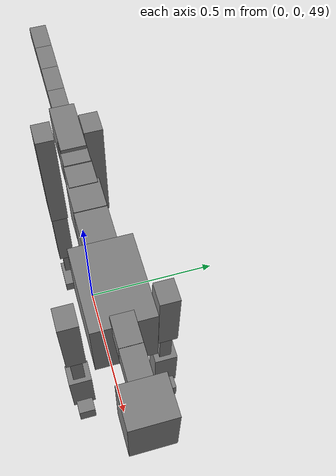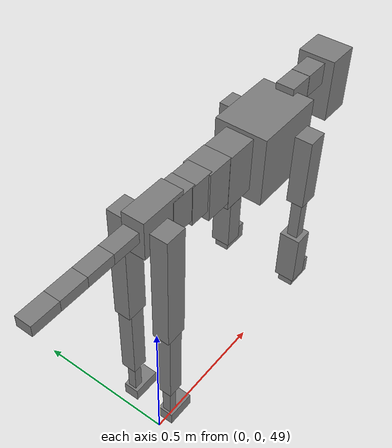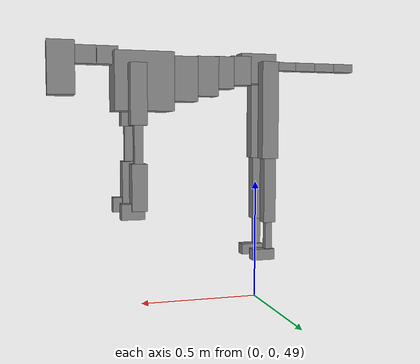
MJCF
<mujoco model="dog">

    <default>
        <joint armature="0.02" stiffness="1" damping="0.2" limited="true"/>
        <geom condim="3" friction="1 0.05 0.05" margin="0.01"/>
        <motor ctrllimited="true" ctrlrange="-1.0 1.0" forcelimited="true" gear="50"/>
    </default>

    <compiler inertiafromgeom="true" angle="radian"/>

    <option timestep="0.016" iterations="50" tolerance="1e-10" solver="Newton" jacobian="dense" cone="pyramidal"/>

    <size nconmax="20000" njmax="60000" nstack="5000000"/>
    <visual>
        <map force="0.1" zfar="30"/>
        <rgba haze="0.15 0.25 0.35 1"/>
        <quality shadowsize="2048"/>
        <global offwidth="800" offheight="800"/>
    </visual>

    <asset>
        <texture type="skybox" builtin="gradient" rgb1="0.3 0.5 0.7" rgb2="0 0 0" width="512" height="512"/>
        <texture name="texplane" type="2d" builtin="checker" rgb1=".2 .3 .4" rgb2=".1 0.15 0.2" width="512" height="512"
                 mark="cross" markrgb=".8 .8 .8"/>
        <texture name="texgeom" type="cube" builtin="flat" mark="cross" width="127" height="1278" rgb1="0.8 0.6 0.4"
                 rgb2="0.8 0.6 0.4" markrgb="1 1 1" random="0.01"/>

        <material name="matplane" reflectance="0.3" texture="texplane" texrepeat="1 1" texuniform="true"/>
        <material name="matgeom" texture="texgeom" texuniform="true" rgba="0.8 0.6 .4 1"/>
    </asset>

    <worldbody>
        <geom name="floor" pos="0 0 0" size="0 0 .25" type="plane" material="matplane" condim="3"/>

        <light directional="false" diffuse=".2 .2 .2" specular="0 0 0" pos="0 0 5" dir="0 0 -1" castshadow="false"/>
        <light mode="targetbodycom" target="torso" directional="false" diffuse=".8 .8 .8" specular="0.3 0.3 0.3"
               pos="0 0 4.0" dir="0 0 -1"/>

        <body name="root" pos="0 0 50">
            <freejoint name="root_1"/>
            <geom type="box" pos="0 0 -0.02" size="0.0774  0.0358  0.063" density="2030"/>

            <body name="spine1" pos="0.054 0 0">
                <joint name="spine1_y" axis="0 1 0" range="0 0.7" limited="true"/>
                <geom type="box" pos="0.02375 0 -0.03" size="0.04375  0.0375  0.05985" density="2030"/>

                <body name="spine2" pos="0.0612 0 0">
                    <joint name="spine2_y" axis="0 1 0" range="-0.15 0.15" limited="true"/>
                    <geom type="box" pos="0.03555  0  -0.04" size="0.04055  0.039  0.06615" density="2030"/>

                    <body name="spine3" pos="0.0730 0 0">
                        <joint name="spine3_y" axis="0 1 0" range="-0.15 0.15" limited="true"/>
                        <geom type="box" pos="0.03555  0  -0.057" size="0.04555  0.0445  0.081" density="2030"/>

                        <body name="spine4" pos="0.0780 0 0">
                            <joint name="spine4_y" axis="0 1 0" range="-0.15 0.15" limited="true"/>
                            <geom type="box" pos="0.05265  0  -0.07" size="0.05265  0.045  0.09135" density="2030"/>

                            <body name="torso" pos="0.1082 0 0">
                                <joint name="torso_y" axis="0 1 0" range="-0.15 0.15" limited="true"/>
                                <geom type="box" pos="0.11925  0  -0.085" size="0.11925  0.085  0.11745"
                                      density="2030"/>

                                <body name="neck1" pos="0.2160  0   0.0180">
                                    <joint name="neck1_y" axis="0 1 0" range="-1.2  -1" limited="true"/>
                                    <geom type="box" pos="0.0423  0  0" size="0.0423  0.03  0.036" density="2325"/>

                                    <body name="neck2" pos="0.0853  0  0">
                                        <joint name="neck2_y" axis="0 1 0" range="0.1  0" limited="true"/>
                                        <geom type="box" pos="0.0423  0  0" size="0.0423  0.03  0.036" density="2325"/>

                                        <body name="head" pos="0.0853  0  0">
                                            <joint name="head_y" axis="0 1 0" range="-0.3  -0.2" limited="true"/>
                                            <geom type="box" pos="0.0531  0  -0.055" size="0.0531  0.06  0.1044"
                                                  density="4030"/>

                                        </body>
                                    </body>
                                </body>

                                <body name="front_shoulder" pos="0.156  0   -0.0480">
                                    <joint name="front_shoulder_y" axis="0 1 0" range="-1 1.5" limited="true"/>
                                    <geom type="box" pos="0 0.13 -0.0930" size="0.0328  0.0280  0.1197" density="1158"/>
                                    <geom type="box" pos="0 -0.13 -0.0930" size="0.0328  0.0280  0.1197"
                                          density="1158"/>

                                    <body name="front_elbow" pos="0  0  -0.1861">
                                        <joint name="front_elbow_y" axis="0 1 0" range="-2 0" limited="true"/>
                                        <geom type="box" pos="0 0.13 -0.0942" size="0.0170  0.0174  0.0942"
                                              density="1081"/>
                                        <geom type="box" pos="0 -0.13 -0.0942" size="0.0170  0.0174  0.0942"
                                              density="1081"/>

                                        <body name="front_wrist" pos="0  0  -0.1883">
                                            <joint name="front_wrist_y" axis="0 1 0" range="-0.2 0" limited="true"/>
                                            <geom type="box" pos="0 0.13 -0.0781" size="0.0304  0.0338  0.0912"
                                                  density="1664"/>
                                            <geom type="box" pos="0 -0.13 -0.0781" size="0.0304  0.0338  0.0912"
                                                  density="1664"/>

                                            <body name="front_finger_end" pos="0  0  -0.1561">
                                                <joint name="front_finger_y" axis="0 1 0" range="-0.4 1"
                                                       limited="true"/>
                                                <geom type="box" pos="0.0247  0.13  -0.0158"
                                                      size="0.0452  0.0247  0.0308" density="1515"/>
                                                <geom type="box" pos="0.0247  -0.13  -0.0158"
                                                      size="0.0452  0.0247  0.0308" density="1515"/>

                                            </body>

                                        </body>
                                    </body>
                                </body>

                            </body>
                        </body>
                    </body>
                </body>
            </body>

            <body name="back_hip" pos="-0.03 0 -0.018">
                <joint name="back_hip_y" axis="0 1 0" range="-1.5 0.3" limited="true"/>
                <geom type="box" pos="0 0.07 -0.1776" size="0.0352  0.0276  0.2004" density="1154"/>
                <geom type="box" pos="0 -0.07 -0.1776" size="0.0352  0.0276  0.2004" density="1154"/>

                <body name="back_knee" pos="0  0  -0.3552">
                    <joint name="back_knee_y" axis="0 1 0" range="0 2.8" limited="true"/>
                    <geom type="box" pos="0 0.07 -0.1378" size="0.0256  0.0252  0.1534" density="1227"/>
                    <geom type="box" pos="0 -0.07 -0.1378" size="0.0256  0.0252  0.1534" density="1227"/>

                    <body name="back_ankle" pos="0  0  -0.2756">
                        <joint name="back_ankle_y" axis="0 1 0" range="-2.2 0" limited="true"/>
                        <geom type="box" pos="0 0.07 -0.0718" size="0.0142  0.0142  0.0831" density="1284"/>
                        <geom type="box" pos="0 -0.07 -0.0718" size="0.0142  0.0142  0.0831" density="1284"/>

                        <body name="back_toe_end" pos="0  0  -0.1436">
                            <joint name="back_toe_y" axis="0 1 0" range="-0.4 1" limited="true"/>
                            <geom type="box" pos="0.0257  0.07  -0.0076" size="0.0470  0.0257  0.0226" density="1515"/>
                            <geom type="box" pos="0.0257  -0.07  -0.0076" size="0.0470  0.0257  0.0226" density="1515"/>

                        </body>
                    </body>
                </body>
            </body>

            <body name="tail1" pos="-0.074 0 -0.006">
                <joint name="tail1_y" axis="0 1 0" range="-0.2 0.2" limited="true"/>
                <geom type="box" pos="-0.0536  0  0" size="0.045  0.025  0.0175" density="1587"/>

                <body name="tail2" pos="-0.09 0 0">
                    <joint name="tail2_y" axis="0 1 0" range="-0.2 0.2" limited="true"/>
                    <geom type="box" pos="-0.0536  0  0" size="0.045  0.025  0.0175" density="1587"/>

                    <body name="tail3" pos="-0.09 0 0">
                        <joint name="tail3_y" axis="0 1 0" range="-0.2 0.2" limited="true"/>
                        <geom type="box" pos="-0.0536  0  0" size="0.045  0.025  0.0175" density="1587"/>

                        <body name="tail4" pos="-0.09 0 0">
                            <joint name="tail4_y" axis="0 1 0" range="-0.2 0.2" limited="true"/>
                            <geom type="box" pos="-0.0536  0  0" size="0.045  0.025  0.0175" density="1587"/>

                        </body>
                    </body>
                </body>
            </body>
        </body>
    </worldbody>

    <actuator>
        <motor joint="spine1_y" forcerange="-150 150     "/>
        <motor joint="spine2_y" forcerange="-150 150     "/>
        <motor joint="spine3_y" forcerange="-150 150     "/>
        <motor joint="spine4_y" forcerange="-150 150     "/>
        <motor joint="torso_y" forcerange="-150 150     "/>
        <motor joint="neck1_y" forcerange="-100 100       "/>
        <motor joint="neck2_y" forcerange="-100 100       "/>
        <motor joint="head_y" forcerange="-150 150       "/>
        <motor joint="front_shoulder_y" forcerange="-136.55 150.14"/>
        <motor joint="front_elbow_y" forcerange="-109.29 116.90"/>
        <motor joint="front_wrist_y" forcerange="-142.16 128.49"/>
        <motor joint="front_finger_y" forcerange="-68.98 22.54"/>
        <motor joint="back_hip_y" forcerange="-330.35 237.94"/>
        <motor joint="back_knee_y" forcerange="-290.33 276.68"/>
        <motor joint="back_angle_y" forcerange="-70.49 56.27"/>
        <motor joint="back_toe_y" forcerange="-99.32 25.98"/>
        <motor joint="tail1_y" forcerange="-50 50     "/>
        <motor joint="tail2_y" forcerange="-50 50     "/>
        <motor joint="tail3_y" forcerange="-50 50     "/>
        <motor joint="tail4_y" forcerange="-50 50     "/>
    </actuator>
</mujoco>
